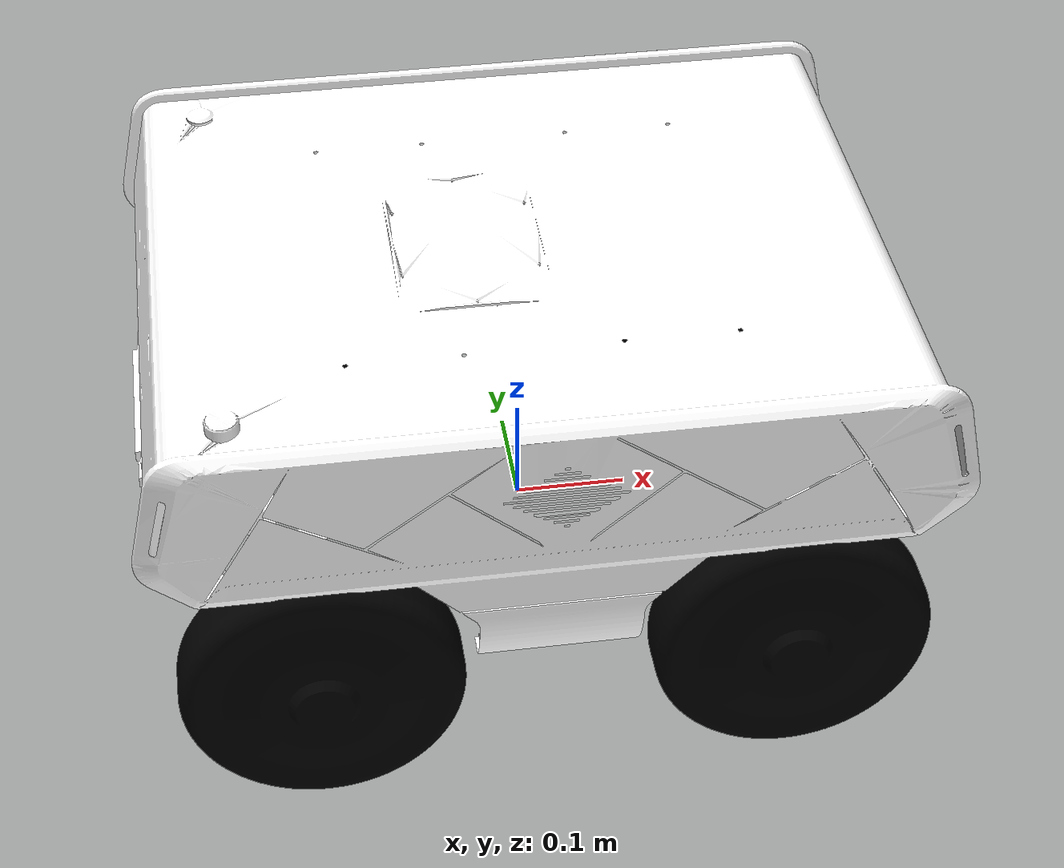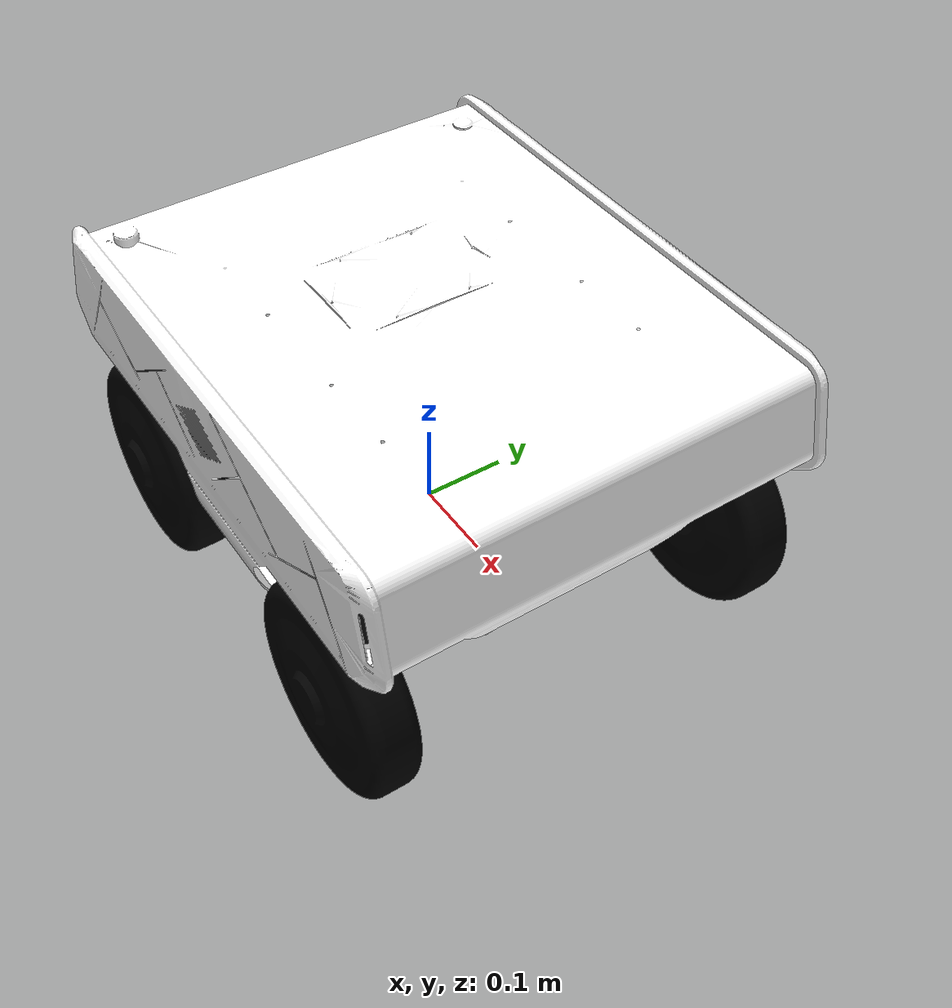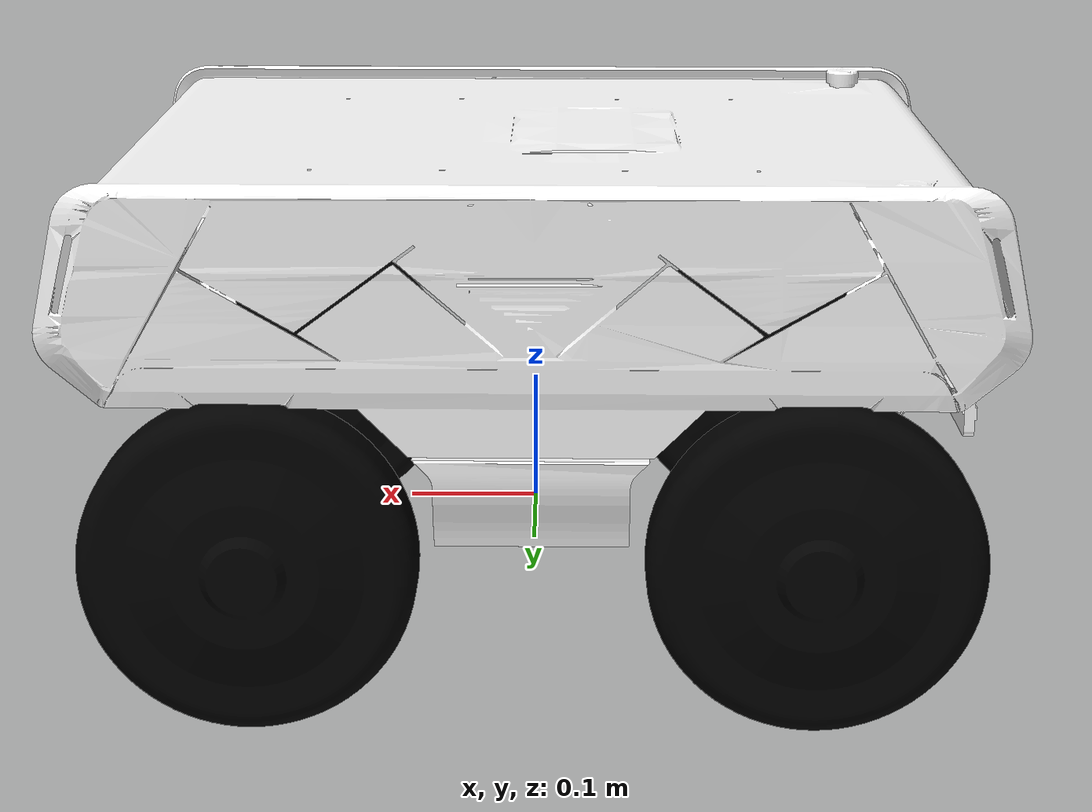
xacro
<?xml version="1.0" encoding="utf-8"?>

<robot name="fw_mid" xmlns:xacro="http://www.ros.org/wiki/xacro">

    <xacro:include filename="$(find fw-mid)/urdf/macros.xacro" />

    <link name="base_footprint">
    </link>

    <link name="base_link">
        <visual>
            <geometry>
                <mesh filename="package://fw-mid/meshes/fw-mid-chassis.STL" scale="1 1 1"/>
            </geometry>
            <origin xyz="-0.34 -0.275 0.01" rpy="1.57 0 1.57" />
            <material name="white">
                <color rgba="1 1 1 1" />
            </material>
        </visual>
        <collision>
            <geometry>
                <box size="0.68 0.55 0.2" />
            </geometry>
            <origin xyz="0.0 0.0 0.0" rpy="0.0 0.0 0.0" />
        </collision>
        <inertial>
        <origin xyz="0 0 0" />
        <mass value="52" />
        <inertia
            ixx="2.15" ixy="0" ixz="0"
            iyy="2.84" iyz="0"
            izz="3.31"
        />
        </inertial>

    </link>

    <joint name="base_link2base_footprint" type="fixed">
        <parent link="base_footprint" />
        <child link="base_link"/>
        <origin xyz="0 0 0.032" />
    </joint>

    <link name="left_steering_hinge">
        <visual>
            <geometry>
                <cylinder radius="0.02" length="0.005" />
            </geometry>
            <origin xyz="0 0 0" rpy="1.57 0 0" />
            <material name="black">
                <color rgba="0.0 0.0 0.0 1.0" />
            </material>
        </visual>
        <collision>
            <geometry>
                <cylinder radius="0.01" length="0.005" />
            </geometry>
            <origin xyz="0.0 0.0 0.0" rpy="1.57 0.0 0.0" />
        </collision>
        <inertial>
            <origin xyz="0 0 0" />
            <mass value="1" />
            <inertia ixx="2.7E-05" ixy="0" ixz="0" iyy="2.7E-05" iyz="0" izz="5E-05" />
        </inertial>
    </link>

    <joint name="left_steering_hinge_joint" type="revolute">
        <parent link="base_link" />
        <child link="left_steering_hinge" />
        <origin xyz="0.2 0.24 0" />
        <axis xyz="0 0 1" />
        <limit lower="-1.57" upper="1.57" effort="10.0" velocity="50.0"/>
    </joint>

    <link name="left_front_wheel">
        <visual>
            <geometry>
                <mesh filename="package://fw-mid/meshes/fw-mid-luntai.STL" scale="1 1 1"/>
            </geometry>
            <origin xyz="0.12 -0.102 0.12" rpy="1.57 1.57 -3.14" />
            <material name="black">
                <color rgba="0.0 0.0 0.0 1.0" />
            </material>
        </visual>
        <collision>
            <geometry>
                <cylinder radius="0.12" length="0.055" />
            </geometry>
            <origin xyz="0.0 0.0 0.0" rpy="1.57 0.0 0.0" />
        </collision>
        <inertial>
            <origin xyz="0 0 0" />
            <mass value="4" />
            <inertia
            ixx="0.01603" ixy="0" ixz="0"
            iyy="0.01603" iyz="0"
            izz="0.0288"
            />
        </inertial>
    </link>

    <joint name="left_front_wheel_joint" type="continuous">
        <parent link="left_steering_hinge" />
        <child link="left_front_wheel" />
        <origin xyz="0 0.0 0" />
        <axis xyz="0 1 0" />
        <limit effort="10" velocity="1000" />
    </joint>

    <link name="right_steering_hinge">
        <visual>
            <geometry>
                 <cylinder radius="0.02" length="0.005" />
            </geometry>
            <origin xyz="0 0 0" rpy="1.57 0 0" />
            <material name="black">
                <color rgba="0.0 0.0 0.0 1.0" />
            </material>
        </visual>
        <collision>
            <geometry>
                <cylinder radius="0.01" length="0.005" />
            </geometry>
            <origin xyz="0.0 0.0 0.0" rpy="1.57 0.0 0.0" />
        </collision>
        <inertial>
            <origin xyz="0 0 0" />
            <mass value="1" />
            <inertia ixx="2.7E-05" ixy="0" ixz="0" iyy="2.7E-05" iyz="0" izz="5E-05" />
        </inertial>
    </link>

    <joint name="right_steering_hinge_joint" type="revolute">
        <parent link="base_link" />
        <child link="right_steering_hinge" />
        <origin xyz="0.2 -0.24 0" />
        <axis xyz="0 0 1" />
        <limit lower="-1.57" upper="1.57" effort="10.0" velocity="50.0"/>
    </joint>

     <link name="right_front_wheel">
        <visual>
            <geometry>
                <mesh filename="package://fw-mid/meshes/fw-mid-luntai.STL" scale="1 1 1"/>
            </geometry>
            <origin xyz="-0.12 0.102 0.12" rpy="1.57 1.57 0" />
            <material name="black">
                <color rgba="0.0 0.0 0.0 1.0" />
            </material>
        </visual>
        <collision>
            <geometry>
                <cylinder radius="0.12" length="0.055" />
            </geometry>
            <origin xyz="0.0 0.0 0.0" rpy="1.57 0.0 0.0" />
        </collision>
        <inertial>
            <origin xyz="0 0 0" />
            <mass value="4" />
            <inertia
            ixx="0.01603" ixy="0" ixz="0"
            iyy="0.01603" iyz="0"
            izz="0.0288"
            />
        </inertial>
    </link>

    <joint name="right_front_wheel_joint" type="continuous">
        <parent link="right_steering_hinge" />
        <child link="right_front_wheel" />
        <origin xyz="0 -0.0 0" />
        <axis xyz="0 1 0" />
        <limit effort="10" velocity="1000" />
    </joint>

    <link name="rear_left_steering_hinge">
        <visual>
            <geometry>
                <cylinder radius="0.02" length="0.005" />
            </geometry>
            <origin xyz="0 0 0" rpy="1.57 0 0" />
            <material name="black">
                <color rgba="0.0 0.0 0.0 1.0" />
            </material>
        </visual>
        <collision>
            <geometry>
                <cylinder radius="0.01" length="0.005" />
            </geometry>
            <origin xyz="0.0 0.0 0.0" rpy="1.57 0.0 0.0" />
        </collision>
        <inertial>
            <origin xyz="0 0 0" />
            <mass value="1" />
            <inertia ixx="2.7E-05" ixy="0" ixz="0" iyy="2.7E-05" iyz="0" izz="5E-05" />
        </inertial>
    </link>

    <joint name="rear_left_steering_hinge_joint" type="revolute">
        <parent link="base_link" />
        <child link="rear_left_steering_hinge" />
        <origin xyz="-0.2 0.24 0" />
        <axis xyz="0 0 1" />
        <limit lower="-1.57" upper="1.57" effort="10.0" velocity="50.0"/>
    </joint>

    <link name="left_rear_wheel">
        <visual>
            <geometry>
                <mesh filename="package://fw-mid/meshes/fw-mid-luntai.STL" scale="1 1 1"/>
            </geometry>
            <origin xyz="0.12 -0.102 0.12" rpy="1.57 1.57 3.14" />
            <material name="black">
                <color rgba="0.0 0.0 0.0 1.0" />
            </material>
        </visual>
        <collision>
            <geometry>
                <cylinder radius="0.12" length="0.055" />
            </geometry>
            <origin xyz="0.0 0.0 0.0" rpy="1.57 0.0 0.0" />
        </collision>
        <inertial>
            <origin xyz="0 0 0" />
            <mass value="4" />
            <inertia
            ixx="0.01603" ixy="0" ixz="0"
            iyy="0.01603" iyz="0"
            izz="0.0288"
            />
        </inertial>
    </link>

    <joint name="left_rear_wheel_joint" type="continuous">
        <parent link="rear_left_steering_hinge" />
        <child link="left_rear_wheel" />
        <origin xyz="0 0.0 0" />
        <axis xyz="0 1 0" />
        <limit effort="10" velocity="1000" />
    </joint>

    <link name="rear_right_steering_hinge">
        <visual>
            <geometry>
                <cylinder radius="0.02" length="0.005" />
            </geometry>
            <origin xyz="0 0 0" rpy="1.57 0 0" />
            <material name="black">
                <color rgba="0.0 0.0 0.0 1.0" />
            </material>
        </visual>
        <collision>
            <geometry>
                <cylinder radius="0.01" length="0.005" />
            </geometry>
            <origin xyz="0.0 0.0 0.0" rpy="1.57 0.0 0.0" />
        </collision>
        <inertial>
            <origin xyz="0 0 0" />
            <mass value="1" />
            <inertia ixx="2.7E-05" ixy="0" ixz="0" iyy="2.7E-05" iyz="0" izz="5E-05" />
        </inertial>
    </link>

    <joint name="rear_right_steering_hinge_joint" type="revolute">
        <parent link="base_link" />
        <child link="rear_right_steering_hinge" />
        <origin xyz="-0.2 -0.24 0" />
        <axis xyz="0 0 1" />
        <limit lower="-1.57" upper="1.57" effort="10.0" velocity="50.0"/>
    </joint>

    <link name="right_rear_wheel">
        <visual>
            <geometry>
                <mesh filename="package://fw-mid/meshes/fw-mid-luntai.STL" scale="1 1 1"/>
            </geometry>
            <origin xyz="-0.12 0.102 0.12" rpy="1.57 1.57 0" />
            <material name="black">
                <color rgba="0.0 0.0 0.0 1.0" />
            </material>
        </visual>
        <collision>
            <geometry>
                <cylinder radius="0.12" length="0.055" />
            </geometry>
            <origin xyz="0.0 0.0 0.0" rpy="1.57 0.0 0.0" />
        </collision>
        <inertial>
            <origin xyz="0 0 0" />
            <mass value="4" />
            <inertia
            ixx="0.01603" ixy="0" ixz="0"
            iyy="0.01603" iyz="0"
            izz="0.0288"
            />
        </inertial>
    </link>

    <joint name="right_rear_wheel_joint" type="continuous">
        <parent link="rear_right_steering_hinge" />
        <child link="right_rear_wheel" />
        <origin xyz="0 -0.0 0" />
        <axis xyz="0 1 0" />
        <limit effort="10" velocity="1000" />
    </joint>

  <xacro:include filename="$(find fw-mid)/urdf/fw-mid.gazebo" />

</robot>
